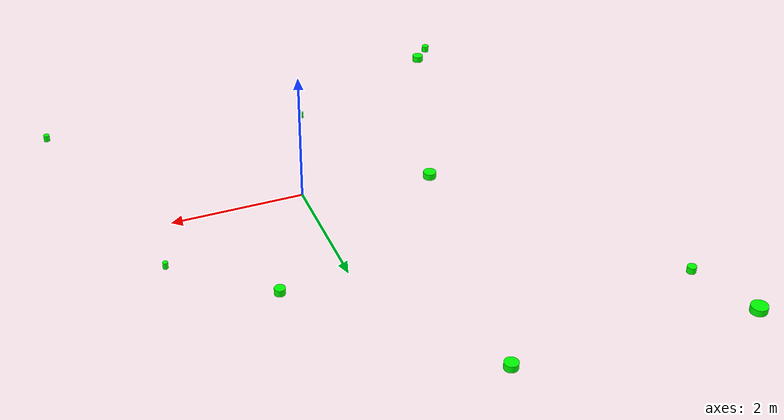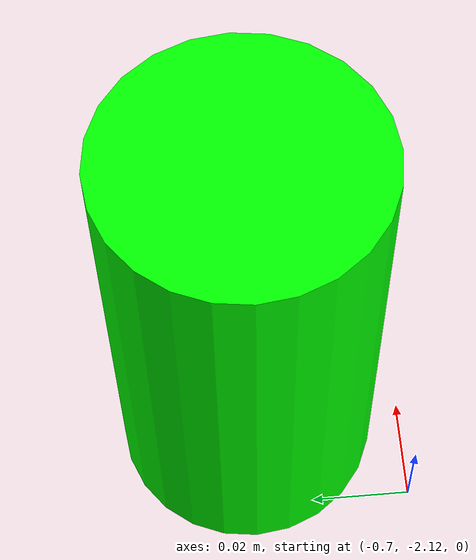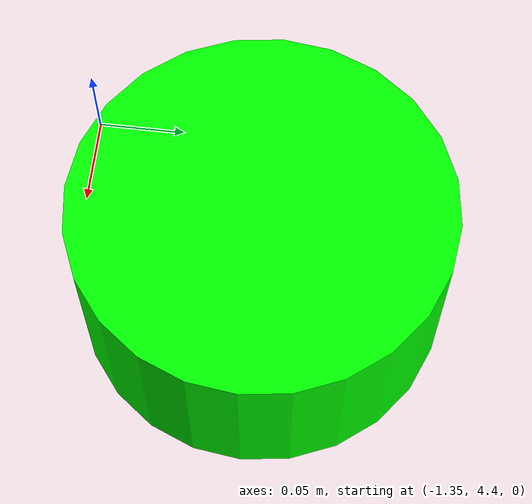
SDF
<?xml version="1.0"?>
    <sdf version="1.4">
      <world name="default">

<model name="wall0">
      <pose>-5 0 0.25 0 0 1.57079</pose>
      <static>true</static>
      <link name="body">
        <visual name="visual">
          <geometry>
            <box>
              <size>10 0.1 0.5</size>
            </box>
          </geometry>
          <material>
        <ambient>100 100 100 1</ambient>
        <diffuse>100 100 100 1</diffuse>
      </material>
        </visual>
        <collision name="collision">
          <geometry>
            <box>
              <size>10 0.1 0.5</size>
            </box>
          </geometry>
        </collision>
      </link>
    </model>

<model name="wall1">
      <pose>5 0 0.25 0 0 1.57079</pose>
      <static>true</static>
      <link name="body">
        <visual name="visual">
          <geometry>
            <box>
              <size>10 0.1 0.5</size>
            </box>
          </geometry>
          <material>
        <ambient>100 100 100 1</ambient>
        <diffuse>100 100 100 1</diffuse>
      </material>
        </visual>
        <collision name="collision">
          <geometry>
            <box>
              <size>10 0.1 0.5</size>
            </box>
          </geometry>
        </collision>
      </link>
    </model>

<model name="wall2">
      <pose>0 -5 0.25 0 0 0</pose>
      <static>true</static>
      <link name="body">
        <visual name="visual">
          <geometry>
            <box>
              <size>10 0.1 0.5</size>
            </box>
          </geometry>
          <material>
        <ambient>100 100 100 1</ambient>
        <diffuse>100 100 100 1</diffuse>
      </material>
        </visual>
        <collision name="collision">
          <geometry>
            <box>
              <size>10 0.1 0.5</size>
            </box>
          </geometry>
        </collision>
      </link>
    </model>

<model name="wall3">
      <pose>0 5 0.25 0 0 0</pose>
      <static>true</static>
      <link name="body">
        <visual name="visual">
          <geometry>
            <box>
              <size>10 0.1 0.5</size>
            </box>
          </geometry>
          <material>
        <ambient>100 100 100 1</ambient>
        <diffuse>100 100 100 1</diffuse>
      </material>
        </visual>
        <collision name="collision">
          <geometry>
            <box>
              <size>10 0.1 0.5</size>
            </box>
          </geometry>
        </collision>
      </link>
    </model>

<model name="floor">
      <pose>0 0 -0.01 0 0 0</pose>
      <static>true</static>
      <link name="body">
        <visual name="visual">
          <geometry>
            <box>
              <size>10 10 0.02</size>
            </box>
          </geometry>
          <material>
        <ambient>240 240 240 1</ambient>
        <diffuse>240 240 240 1</diffuse>
      </material>
        </visual>
        <collision name="collision">
          <geometry>
            <box>
              <size>10 10 0.02</size>
            </box>
          </geometry>
              <surface>
                <friction>
                  <ode>
                    <mu>0.5</mu>
                    <mu2>0.5</mu2>
                    <fdir1>0 0 1</fdir1>
                  </ode>
                </friction>
              </surface>
        </collision>
      </link>
    </model>

<model name="plant0">
  <pose>-1.25459881153 4.5071430641 0.05 0 0 0</pose>
  <static>true</static>
  <link name="body">
    <visual name="visual">
      <geometry>
        <cylinder>
          <radius>0.0995408763139</radius>
          <length>0.1</length>
        </cylinder>
      </geometry>
      <material>
    <ambient>0 1 0 1</ambient>
    <diffuse>0 1 0 1</diffuse>
  </material>
    </visual>
  </link>
</model>

<model name="plant1">
  <pose>2.31993941811 0.98658484197 0.05 0 0 0</pose>
  <static>true</static>
  <link name="body">
    <visual name="visual">
      <geometry>
        <cylinder>
          <radius>0.0381342018848</radius>
          <length>0.1</length>
        </cylinder>
      </geometry>
      <material>
    <ambient>0 1 0 1</ambient>
    <diffuse>0 1 0 1</diffuse>
  </material>
    </visual>
  </link>
</model>

<model name="plant2">
  <pose>-3.43981359558 -3.44005479664 0.05 0 0 0</pose>
  <static>true</static>
  <link name="body">
    <visual name="visual">
      <geometry>
        <cylinder>
          <radius>0.0579788043096</radius>
          <length>0.1</length>
        </cylinder>
      </geometry>
      <material>
    <ambient>0 1 0 1</ambient>
    <diffuse>0 1 0 1</diffuse>
  </material>
    </visual>
  </link>
</model>

<model name="plant3">
  <pose>-4.41916387832 3.66176145775 0.05 0 0 0</pose>
  <static>true</static>
  <link name="body">
    <visual name="visual">
      <geometry>
        <cylinder>
          <radius>0.0676270396282</radius>
          <length>0.1</length>
        </cylinder>
      </geometry>
      <material>
    <ambient>0 1 0 1</ambient>
    <diffuse>0 1 0 1</diffuse>
  </material>
    </visual>
  </link>
</model>

<model name="plant4">
  <pose>1.01115011743 2.08072577796 0.05 0 0 0</pose>
  <static>true</static>
  <link name="body">
    <visual name="visual">
      <geometry>
        <cylinder>
          <radius>0.0792890979482</radius>
          <length>0.1</length>
        </cylinder>
      </geometry>
      <material>
    <ambient>0 1 0 1</ambient>
    <diffuse>0 1 0 1</diffuse>
  </material>
    </visual>
  </link>
</model>

<model name="plant5">
  <pose>-4.79415505704 4.69909852162 0.05 0 0 0</pose>
  <static>true</static>
  <link name="body">
    <visual name="visual">
      <geometry>
        <cylinder>
          <radius>0.122072874981</radius>
          <length>0.1</length>
        </cylinder>
      </geometry>
      <material>
    <ambient>0 1 0 1</ambient>
    <diffuse>0 1 0 1</diffuse>
  </material>
    </visual>
  </link>
</model>

<model name="plant6">
  <pose>3.324426408 -2.87660889322 0.05 0 0 0</pose>
  <static>true</static>
  <link name="body">
    <visual name="visual">
      <geometry>
        <cylinder>
          <radius>0.0459575916806</radius>
          <length>0.1</length>
        </cylinder>
      </geometry>
      <material>
    <ambient>0 1 0 1</ambient>
    <diffuse>0 1 0 1</diffuse>
  </material>
    </visual>
  </link>
</model>

<model name="plant7">
  <pose>-3.18175032793 -3.16595490147 0.05 0 0 0</pose>
  <static>true</static>
  <link name="body">
    <visual name="visual">
      <geometry>
        <cylinder>
          <radius>0.0868504769938</radius>
          <length>0.1</length>
        </cylinder>
      </geometry>
      <material>
    <ambient>0 1 0 1</ambient>
    <diffuse>0 1 0 1</diffuse>
  </material>
    </visual>
  </link>
</model>

<model name="plant8">
  <pose>-1.9575775704 0.247564316322 0.05 0 0 0</pose>
  <static>true</static>
  <link name="body">
    <visual name="visual">
      <geometry>
        <cylinder>
          <radius>0.0970138939521</radius>
          <length>0.1</length>
        </cylinder>
      </geometry>
      <material>
    <ambient>0 1 0 1</ambient>
    <diffuse>0 1 0 1</diffuse>
  </material>
    </visual>
  </link>
</model>

<model name="plant9">
  <pose>-0.680549813579 -2.08770859802 0.05 0 0 0</pose>
  <static>true</static>
  <link name="body">
    <visual name="visual">
      <geometry>
        <cylinder>
          <radius>0.0260385536536</radius>
          <length>0.1</length>
        </cylinder>
      </geometry>
      <material>
    <ambient>0 1 0 1</ambient>
    <diffuse>0 1 0 1</diffuse>
  </material>
    </visual>
  </link>
</model>

  </world>
    </sdf>
